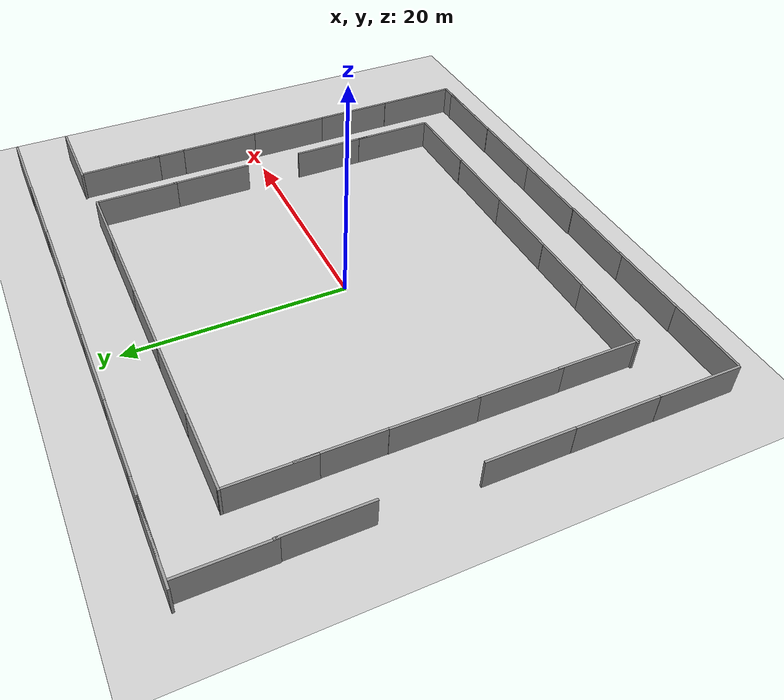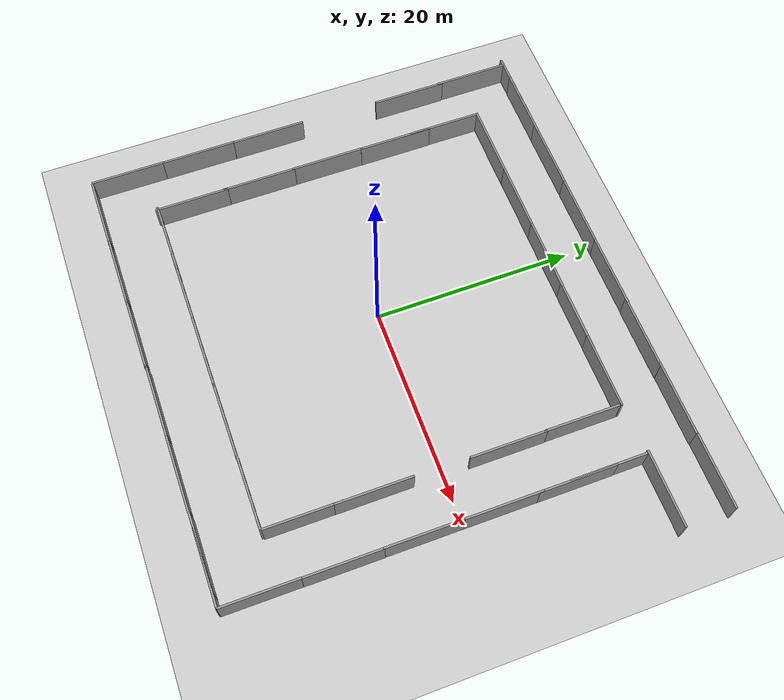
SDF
<sdf version="1.7">
 <world name="default">
  <model name="ground_plane">
   <static>1</static>
   <link name="link">
    <collision name="collision">
     <geometry><plane><normal>0 0 1</normal><size>100 100</size></plane></geometry>
     <surface><friction><ode><mu>100</mu><mu2>50</mu2></ode></friction></surface>
    </collision>
    <visual name="visual">
     <cast_shadows>0</cast_shadows>
     <geometry><plane><normal>0 0 1</normal><size>100 100</size></plane></geometry>
     <material>
      <script><uri>file://media/materials/scripts/gazebo.material</uri><name>Gazebo/Grey</name></script>
     </material>
    </visual>
   </link>
  </model>
  <light name="sun" type="directional">
   <pose>0 0 10 0 -0 0</pose>
   <diffuse>0.8 0.8 0.8 1</diffuse>
   <specular>0.2 0.2 0.2 1</specular>
   <attenuation>
    <range>1000</range>
    <constant>0.9</constant>
    <linear>0.01</linear>
    <quadratic>0.001</quadratic>
   </attenuation>
   <direction>-0.5 0.1 -0.9</direction>
   <spot><inner_angle>0</inner_angle><outer_angle>0</outer_angle><falloff>0</falloff></spot>
  </light>
  <gravity>0 0 -9.8</gravity>
  <magnetic_field>6e-06 2.3e-05 -4.2e-05</magnetic_field>
  <atmosphere type="adiabatic"/>
  <physics name="default_physics" default="0" type="ode">
   <max_step_size>0.001</max_step_size>
   <real_time_factor>1</real_time_factor>
   <real_time_update_rate>1000</real_time_update_rate>
  </physics>
  <scene><ambient>0.4 0.4 0.4 1</ambient><background>0.7 0.7 0.7 1</background><shadows>1</shadows></scene>
  <audio><device>default</device></audio>
  <spherical_coordinates>
   <surface_model>EARTH_WGS84</surface_model>
   <latitude_deg>0</latitude_deg>
   <longitude_deg>0</longitude_deg>
   <elevation>0</elevation>
   <heading_deg>0</heading_deg>
  </spherical_coordinates>
  <model name="grey_wall_clone_6_clone_9_clone">
   <static>1</static>
   <link name="link">
    <pose>0 0 1.4 0 -0 0</pose>
    <collision name="collision"><geometry><box><size>7.5 0.2 2.8</size></box></geometry></collision>
    <visual name="visual">
     <cast_shadows>0</cast_shadows>
     <geometry><box><size>7.5 0.2 2.8</size></box></geometry>
     <material>
      <script>
       <uri>model://grey_wall/materials/scripts</uri>
       <uri>model://grey_wall/materials/textures</uri>
       <name>vrc/grey_wall</name>
      </script>
     </material>
    </visual>
   </link>
   <pose>-22.8028 -18.7186 0 0 -0 1.5708</pose>
  </model>
  <model name="grey_wall_clone_6_clone_9_clone_0">
   <static>1</static>
   <link name="link">
    <pose>0 0 1.4 0 -0 0</pose>
    <collision name="collision"><geometry><box><size>7.5 0.2 2.8</size></box></geometry></collision>
    <visual name="visual">
     <cast_shadows>0</cast_shadows>
     <geometry><box><size>7.5 0.2 2.8</size></box></geometry>
     <material>
      <script>
       <uri>model://grey_wall/materials/scripts</uri>
       <uri>model://grey_wall/materials/textures</uri>
       <name>vrc/grey_wall</name>
      </script>
     </material>
    </visual>
   </link>
   <pose>-22.7875 -11.3227 0 0 -0 1.5708</pose>
  </model>
  <model name="grey_wall_clone_6_clone_9_clone_1">
   <static>1</static>
   <link name="link">
    <pose>0 0 1.4 0 -0 0</pose>
    <collision name="collision"><geometry><box><size>7.5 0.2 2.8</size></box></geometry></collision>
    <visual name="visual">
     <cast_shadows>0</cast_shadows>
     <geometry><box><size>7.5 0.2 2.8</size></box></geometry>
     <material>
      <script>
       <uri>model://grey_wall/materials/scripts</uri>
       <uri>model://grey_wall/materials/textures</uri>
       <name>vrc/grey_wall</name>
      </script>
     </material>
    </visual>
   </link>
   <pose>-22.7695 -3.82448 0 0 -0 1.5708</pose>
  </model>
  <model name="grey_wall_clone_6_clone_9_clone_2">
   <static>1</static>
   <link name="link">
    <pose>0 0 1.4 0 -0 0</pose>
    <collision name="collision"><geometry><box><size>7.5 0.2 2.8</size></box></geometry></collision>
    <visual name="visual">
     <cast_shadows>0</cast_shadows>
     <geometry><box><size>7.5 0.2 2.8</size></box></geometry>
     <material>
      <script>
       <uri>model://grey_wall/materials/scripts</uri>
       <uri>model://grey_wall/materials/textures</uri>
       <name>vrc/grey_wall</name>
      </script>
     </material>
    </visual>
   </link>
   <pose>-22.6053 18.7039 0 0 -0 1.5708</pose>
  </model>
  <model name="grey_wall_clone_6_clone_9_clone_3">
   <static>1</static>
   <link name="link">
    <pose>0 0 1.4 0 -0 0</pose>
    <collision name="collision"><geometry><box><size>7.5 0.2 2.8</size></box></geometry></collision>
    <visual name="visual">
     <cast_shadows>0</cast_shadows>
     <geometry><box><size>7.5 0.2 2.8</size></box></geometry>
     <material>
      <script>
       <uri>model://grey_wall/materials/scripts</uri>
       <uri>model://grey_wall/materials/textures</uri>
       <name>vrc/grey_wall</name>
      </script>
     </material>
    </visual>
   </link>
   <pose>-22.5434 11.6616 0 0 -0 1.5708</pose>
  </model>
  <model name="grey_wall_clone_3_clone">
   <static>1</static>
   <link name="link">
    <pose>0 0 1.4 0 -0 0</pose>
    <collision name="collision"><geometry><box><size>7.5 0.2 2.8</size></box></geometry></collision>
    <visual name="visual">
     <cast_shadows>0</cast_shadows>
     <geometry><box><size>7.5 0.2 2.8</size></box></geometry>
     <material>
      <script>
       <uri>model://grey_wall/materials/scripts</uri>
       <uri>model://grey_wall/materials/textures</uri>
       <name>vrc/grey_wall</name>
      </script>
     </material>
    </visual>
   </link>
   <pose>-18.9579 -22.429 0 0 -0 0</pose>
  </model>
  <model name="grey_wall_clone_3_clone_0">
   <static>1</static>
   <link name="link">
    <pose>0 0 1.4 0 -0 0</pose>
    <collision name="collision"><geometry><box><size>7.5 0.2 2.8</size></box></geometry></collision>
    <visual name="visual">
     <cast_shadows>0</cast_shadows>
     <geometry><box><size>7.5 0.2 2.8</size></box></geometry>
     <material>
      <script>
       <uri>model://grey_wall/materials/scripts</uri>
       <uri>model://grey_wall/materials/textures</uri>
       <name>vrc/grey_wall</name>
      </script>
     </material>
    </visual>
   </link>
   <pose>-11.8108 -22.4126 0 0 -0 0</pose>
  </model>
  <model name="grey_wall_clone_3_clone_1">
   <static>1</static>
   <link name="link">
    <pose>0 0 1.4 0 -0 0</pose>
    <collision name="collision"><geometry><box><size>7.5 0.2 2.8</size></box></geometry></collision>
    <visual name="visual">
     <cast_shadows>0</cast_shadows>
     <geometry><box><size>7.5 0.2 2.8</size></box></geometry>
     <material>
      <script>
       <uri>model://grey_wall/materials/scripts</uri>
       <uri>model://grey_wall/materials/textures</uri>
       <name>vrc/grey_wall</name>
      </script>
     </material>
    </visual>
   </link>
   <pose>-4.80218 -22.3996 0 0 -0 0</pose>
  </model>
  <model name="grey_wall_clone_3_clone_2">
   <static>1</static>
   <link name="link">
    <pose>0 0 1.4 0 -0 0</pose>
    <collision name="collision"><geometry><box><size>7.5 0.2 2.8</size></box></geometry></collision>
    <visual name="visual">
     <cast_shadows>0</cast_shadows>
     <geometry><box><size>7.5 0.2 2.8</size></box></geometry>
     <material>
      <script>
       <uri>model://grey_wall/materials/scripts</uri>
       <uri>model://grey_wall/materials/textures</uri>
       <name>vrc/grey_wall</name>
      </script>
     </material>
    </visual>
   </link>
   <pose>2.39237 -22.3412 0 0 -0 0</pose>
  </model>
  <model name="grey_wall_clone_3_clone_3">
   <static>1</static>
   <link name="link">
    <pose>0 0 1.4 0 -0 0</pose>
    <collision name="collision"><geometry><box><size>7.5 0.2 2.8</size></box></geometry></collision>
    <visual name="visual">
     <cast_shadows>0</cast_shadows>
     <geometry><box><size>7.5 0.2 2.8</size></box></geometry>
     <material>
      <script>
       <uri>model://grey_wall/materials/scripts</uri>
       <uri>model://grey_wall/materials/textures</uri>
       <name>vrc/grey_wall</name>
      </script>
     </material>
    </visual>
   </link>
   <pose>9.8867 -22.3495 0 0 -0 0</pose>
  </model>
  <model name="grey_wall_clone_3_clone_4">
   <static>1</static>
   <link name="link">
    <pose>0 0 1.4 0 -0 0</pose>
    <collision name="collision"><geometry><box><size>7.5 0.2 2.8</size></box></geometry></collision>
    <visual name="visual">
     <cast_shadows>0</cast_shadows>
     <geometry><box><size>7.5 0.2 2.8</size></box></geometry>
     <material>
      <script>
       <uri>model://grey_wall/materials/scripts</uri>
       <uri>model://grey_wall/materials/textures</uri>
       <name>vrc/grey_wall</name>
      </script>
     </material>
    </visual>
   </link>
   <pose>17.3653 -22.3141 0 0 -0 0</pose>
  </model>
  <model name="grey_wall_clone_6_clone_9_clone_clone">
   <static>1</static>
   <link name="link">
    <pose>0 0 1.4 0 -0 0</pose>
    <collision name="collision"><geometry><box><size>7.5 0.2 2.8</size></box></geometry></collision>
    <visual name="visual">
     <cast_shadows>0</cast_shadows>
     <geometry><box><size>7.5 0.2 2.8</size></box></geometry>
     <material>
      <script>
       <uri>model://grey_wall/materials/scripts</uri>
       <uri>model://grey_wall/materials/textures</uri>
       <name>vrc/grey_wall</name>
      </script>
     </material>
    </visual>
   </link>
   <pose>22.4468 -18.5968 0 0 -0 1.5708</pose>
  </model>
  <model name="grey_wall_clone_3_clone_5">
   <static>1</static>
   <link name="link">
    <pose>0 0 1.4 0 -0 0</pose>
    <collision name="collision"><geometry><box><size>7.5 0.2 2.8</size></box></geometry></collision>
    <visual name="visual">
     <cast_shadows>0</cast_shadows>
     <geometry><box><size>7.5 0.2 2.8</size></box></geometry>
     <material>
      <script>
       <uri>model://grey_wall/materials/scripts</uri>
       <uri>model://grey_wall/materials/textures</uri>
       <name>vrc/grey_wall</name>
      </script>
     </material>
    </visual>
   </link>
   <pose>18.7624 -22.3211 0 0 -0 0</pose>
  </model>
  <model name="grey_wall_clone_6_clone_9_clone_clone_clone">
   <static>1</static>
   <link name="link">
    <pose>0 0 1.4 0 -0 0</pose>
    <collision name="collision"><geometry><box><size>7.5 0.2 2.8</size></box></geometry></collision>
    <visual name="visual">
     <cast_shadows>0</cast_shadows>
     <geometry><box><size>7.5 0.2 2.8</size></box></geometry>
     <material>
      <script>
       <uri>model://grey_wall/materials/scripts</uri>
       <uri>model://grey_wall/materials/textures</uri>
       <name>vrc/grey_wall</name>
      </script>
     </material>
    </visual>
   </link>
   <pose>22.4685 -11.1621 0 0 -0 1.5708</pose>
  </model>
  <model name="grey_wall_clone_6_clone_9_clone_clone_clone_0">
   <static>1</static>
   <link name="link">
    <pose>0 0 1.4 0 -0 0</pose>
    <collision name="collision"><geometry><box><size>7.5 0.2 2.8</size></box></geometry></collision>
    <visual name="visual">
     <cast_shadows>0</cast_shadows>
     <geometry><box><size>7.5 0.2 2.8</size></box></geometry>
     <material>
      <script>
       <uri>model://grey_wall/materials/scripts</uri>
       <uri>model://grey_wall/materials/textures</uri>
       <name>vrc/grey_wall</name>
      </script>
     </material>
    </visual>
   </link>
   <pose>22.4537 -3.79502 0 0 -0 1.5708</pose>
  </model>
  <model name="grey_wall_clone_6_clone_9_clone_clone_clone_1">
   <static>1</static>
   <link name="link">
    <pose>0 0 1.4 0 -0 0</pose>
    <collision name="collision"><geometry><box><size>7.5 0.2 2.8</size></box></geometry></collision>
    <visual name="visual">
     <cast_shadows>0</cast_shadows>
     <geometry><box><size>7.5 0.2 2.8</size></box></geometry>
     <material>
      <script>
       <uri>model://grey_wall/materials/scripts</uri>
       <uri>model://grey_wall/materials/textures</uri>
       <name>vrc/grey_wall</name>
      </script>
     </material>
    </visual>
   </link>
   <pose>22.4531 3.70303 0 0 -0 1.5708</pose>
  </model>
  <model name="grey_wall_clone_6_clone_9_clone_clone_clone_2">
   <static>1</static>
   <link name="link">
    <pose>0 0 1.4 0 -0 0</pose>
    <collision name="collision"><geometry><box><size>7.5 0.2 2.8</size></box></geometry></collision>
    <visual name="visual">
     <cast_shadows>0</cast_shadows>
     <geometry><box><size>7.5 0.2 2.8</size></box></geometry>
     <material>
      <script>
       <uri>model://grey_wall/materials/scripts</uri>
       <uri>model://grey_wall/materials/textures</uri>
       <name>vrc/grey_wall</name>
      </script>
     </material>
    </visual>
   </link>
   <pose>22.4645 10.7624 0 0 -0 1.5708</pose>
  </model>
  <model name="grey_wall_clone_6_clone_9_clone_clone_clone_3">
   <static>1</static>
   <link name="link">
    <pose>0 0 1.4 0 -0 0</pose>
    <collision name="collision"><geometry><box><size>7.5 0.2 2.8</size></box></geometry></collision>
    <visual name="visual">
     <cast_shadows>0</cast_shadows>
     <geometry><box><size>7.5 0.2 2.8</size></box></geometry>
     <material>
      <script>
       <uri>model://grey_wall/materials/scripts</uri>
       <uri>model://grey_wall/materials/textures</uri>
       <name>vrc/grey_wall</name>
      </script>
     </material>
    </visual>
   </link>
   <pose>22.4416 13.7343 0 0 -0 1.5708</pose>
  </model>
  <model name="grey_wall_clone_3_clone_6">
   <static>1</static>
   <link name="link">
    <pose>0 0 1.4 0 -0 0</pose>
    <collision name="collision"><geometry><box><size>7.5 0.2 2.8</size></box></geometry></collision>
    <visual name="visual">
     <cast_shadows>0</cast_shadows>
     <geometry><box><size>7.5 0.2 2.8</size></box></geometry>
     <material>
      <script>
       <uri>model://grey_wall/materials/scripts</uri>
       <uri>model://grey_wall/materials/textures</uri>
       <name>vrc/grey_wall</name>
      </script>
     </material>
    </visual>
   </link>
   <pose>25.9397 22.4893 0 0 -0 0</pose>
  </model>
  <model name="grey_wall_clone_3_clone_7">
   <static>1</static>
   <link name="link">
    <pose>0 0 1.4 0 -0 0</pose>
    <collision name="collision"><geometry><box><size>7.5 0.2 2.8</size></box></geometry></collision>
    <visual name="visual">
     <cast_shadows>0</cast_shadows>
     <geometry><box><size>7.5 0.2 2.8</size></box></geometry>
     <material>
      <script>
       <uri>model://grey_wall/materials/scripts</uri>
       <uri>model://grey_wall/materials/textures</uri>
       <name>vrc/grey_wall</name>
      </script>
     </material>
    </visual>
   </link>
   <pose>25.9506 17.604 0 0 -0 0</pose>
  </model>
  <model name="grey_wall_clone_3_clone_8">
   <static>1</static>
   <link name="link">
    <pose>0 0 1.4 0 -0 0</pose>
    <collision name="collision"><geometry><box><size>7.5 0.2 2.8</size></box></geometry></collision>
    <visual name="visual">
     <cast_shadows>0</cast_shadows>
     <geometry><box><size>7.5 0.2 2.8</size></box></geometry>
     <material>
      <script>
       <uri>model://grey_wall/materials/scripts</uri>
       <uri>model://grey_wall/materials/textures</uri>
       <name>vrc/grey_wall</name>
      </script>
     </material>
    </visual>
   </link>
   <pose>18.5546 22.4562 0 0 -0 0</pose>
  </model>
  <model name="grey_wall_clone_3_clone_9">
   <static>1</static>
   <link name="link">
    <pose>0 0 1.4 0 -0 0</pose>
    <collision name="collision"><geometry><box><size>7.5 0.2 2.8</size></box></geometry></collision>
    <visual name="visual">
     <cast_shadows>0</cast_shadows>
     <geometry><box><size>7.5 0.2 2.8</size></box></geometry>
     <material>
      <script>
       <uri>model://grey_wall/materials/scripts</uri>
       <uri>model://grey_wall/materials/textures</uri>
       <name>vrc/grey_wall</name>
      </script>
     </material>
    </visual>
   </link>
   <pose>11.4427 22.4286 0 0 -0 0</pose>
  </model>
  <model name="grey_wall_clone_3_clone_10">
   <static>1</static>
   <link name="link">
    <pose>0 0 1.4 0 -0 0</pose>
    <collision name="collision"><geometry><box><size>7.5 0.2 2.8</size></box></geometry></collision>
    <visual name="visual">
     <cast_shadows>0</cast_shadows>
     <geometry><box><size>7.5 0.2 2.8</size></box></geometry>
     <material>
      <script>
       <uri>model://grey_wall/materials/scripts</uri>
       <uri>model://grey_wall/materials/textures</uri>
       <name>vrc/grey_wall</name>
      </script>
     </material>
    </visual>
   </link>
   <pose>4.36112 22.4639 0 0 -0 0</pose>
  </model>
  <model name="grey_wall_clone_3_clone_11">
   <static>1</static>
   <link name="link">
    <pose>0 0 1.4 0 -0 0</pose>
    <collision name="collision"><geometry><box><size>7.5 0.2 2.8</size></box></geometry></collision>
    <visual name="visual">
     <cast_shadows>0</cast_shadows>
     <geometry><box><size>7.5 0.2 2.8</size></box></geometry>
     <material>
      <script>
       <uri>model://grey_wall/materials/scripts</uri>
       <uri>model://grey_wall/materials/textures</uri>
       <name>vrc/grey_wall</name>
      </script>
     </material>
    </visual>
   </link>
   <pose>-3.00989 22.4631 0 0 -0 0</pose>
  </model>
  <model name="grey_wall_clone_3_clone_12">
   <static>1</static>
   <link name="link">
    <pose>0 0 1.4 0 -0 0</pose>
    <collision name="collision"><geometry><box><size>7.5 0.2 2.8</size></box></geometry></collision>
    <visual name="visual">
     <cast_shadows>0</cast_shadows>
     <geometry><box><size>7.5 0.2 2.8</size></box></geometry>
     <material>
      <script>
       <uri>model://grey_wall/materials/scripts</uri>
       <uri>model://grey_wall/materials/textures</uri>
       <name>vrc/grey_wall</name>
      </script>
     </material>
    </visual>
   </link>
   <pose>-10.373 22.477 0 0 -0 0</pose>
  </model>
  <model name="grey_wall_clone_3_clone_13">
   <static>1</static>
   <link name="link">
    <pose>0 0 1.4 0 -0 0</pose>
    <collision name="collision"><geometry><box><size>7.5 0.2 2.8</size></box></geometry></collision>
    <visual name="visual">
     <cast_shadows>0</cast_shadows>
     <geometry><box><size>7.5 0.2 2.8</size></box></geometry>
     <material>
      <script>
       <uri>model://grey_wall/materials/scripts</uri>
       <uri>model://grey_wall/materials/textures</uri>
       <name>vrc/grey_wall</name>
      </script>
     </material>
    </visual>
   </link>
   <pose>-17.0185 22.4867 0 0 -0 0</pose>
  </model>
  <model name="grey_wall_clone_3_clone_14">
   <static>1</static>
   <link name="link">
    <pose>0 0 1.4 0 -0 0</pose>
    <collision name="collision"><geometry><box><size>7.5 0.2 2.8</size></box></geometry></collision>
    <visual name="visual">
     <cast_shadows>0</cast_shadows>
     <geometry><box><size>7.5 0.2 2.8</size></box></geometry>
     <material>
      <script>
       <uri>model://grey_wall/materials/scripts</uri>
       <uri>model://grey_wall/materials/textures</uri>
       <name>vrc/grey_wall</name>
      </script>
     </material>
    </visual>
   </link>
   <pose>-19.5344 22.5041 0 0 -0 0</pose>
  </model>
  <model name="grey_wall_clone_6_clone_9_clone_0_clone">
   <static>1</static>
   <link name="link">
    <pose>0 0 1.4 0 -0 0</pose>
    <collision name="collision"><geometry><box><size>7.5 0.2 2.8</size></box></geometry></collision>
    <visual name="visual">
     <cast_shadows>0</cast_shadows>
     <geometry><box><size>7.5 0.2 2.8</size></box></geometry>
     <material>
      <script>
       <uri>model://grey_wall/materials/scripts</uri>
       <uri>model://grey_wall/materials/textures</uri>
       <name>vrc/grey_wall</name>
      </script>
     </material>
    </visual>
   </link>
   <pose>-17.4486 -13.4774 0 0 -0 1.5708</pose>
  </model>
  <model name="grey_wall_clone_6_clone_9_clone_0_clone_0">
   <static>1</static>
   <link name="link">
    <pose>0 0 1.4 0 -0 0</pose>
    <collision name="collision"><geometry><box><size>7.5 0.2 2.8</size></box></geometry></collision>
    <visual name="visual">
     <cast_shadows>0</cast_shadows>
     <geometry><box><size>7.5 0.2 2.8</size></box></geometry>
     <material>
      <script>
       <uri>model://grey_wall/materials/scripts</uri>
       <uri>model://grey_wall/materials/textures</uri>
       <name>vrc/grey_wall</name>
      </script>
     </material>
    </visual>
   </link>
   <pose>-17.4726 -6.40884 0 0 -0 1.5708</pose>
  </model>
  <model name="grey_wall_clone_6_clone_9_clone_0_clone_0_clone">
   <static>1</static>
   <link name="link">
    <pose>0 0 1.4 0 -0 0</pose>
    <collision name="collision"><geometry><box><size>7.5 0.2 2.8</size></box></geometry></collision>
    <visual name="visual">
     <cast_shadows>0</cast_shadows>
     <geometry><box><size>7.5 0.2 2.8</size></box></geometry>
     <material>
      <script>
       <uri>model://grey_wall/materials/scripts</uri>
       <uri>model://grey_wall/materials/textures</uri>
       <name>vrc/grey_wall</name>
      </script>
     </material>
    </visual>
   </link>
   <pose>-17.4938 0.87072 0 0 -0 1.5708</pose>
  </model>
  <model name="grey_wall_clone_6_clone_9_clone_0_clone_0_clone_0">
   <static>1</static>
   <link name="link">
    <pose>0 0 1.4 0 -0 0</pose>
    <collision name="collision"><geometry><box><size>7.5 0.2 2.8</size></box></geometry></collision>
    <visual name="visual">
     <cast_shadows>0</cast_shadows>
     <geometry><box><size>7.5 0.2 2.8</size></box></geometry>
     <material>
      <script>
       <uri>model://grey_wall/materials/scripts</uri>
       <uri>model://grey_wall/materials/textures</uri>
       <name>vrc/grey_wall</name>
      </script>
     </material>
    </visual>
   </link>
   <pose>-17.4731 8.22832 0 0 -0 1.5708</pose>
  </model>
  <model name="grey_wall_clone_6_clone_9_clone_0_clone_0_clone_1">
   <static>1</static>
   <link name="link">
    <pose>0 0 1.4 0 -0 0</pose>
    <collision name="collision"><geometry><box><size>7.5 0.2 2.8</size></box></geometry></collision>
    <visual name="visual">
     <cast_shadows>0</cast_shadows>
     <geometry><box><size>7.5 0.2 2.8</size></box></geometry>
     <material>
      <script>
       <uri>model://grey_wall/materials/scripts</uri>
       <uri>model://grey_wall/materials/textures</uri>
       <name>vrc/grey_wall</name>
      </script>
     </material>
    </visual>
   </link>
   <pose>-17.506 13.7229 0 0 -0 1.5708</pose>
  </model>
  <model name="grey_wall_clone_3_clone_12_clone">
   <static>1</static>
   <link name="link">
    <pose>0 0 1.4 0 -0 0</pose>
    <collision name="collision"><geometry><box><size>7.5 0.2 2.8</size></box></geometry></collision>
    <visual name="visual">
     <cast_shadows>0</cast_shadows>
     <geometry><box><size>7.5 0.2 2.8</size></box></geometry>
     <material>
      <script>
       <uri>model://grey_wall/materials/scripts</uri>
       <uri>model://grey_wall/materials/textures</uri>
       <name>vrc/grey_wall</name>
      </script>
     </material>
    </visual>
   </link>
   <pose>-13.8586 17.3548 0 0 -0 0</pose>
  </model>
  <model name="grey_wall_clone_3_clone_12_clone_0">
   <static>1</static>
   <link name="link">
    <pose>0 0 1.4 0 -0 0</pose>
    <collision name="collision"><geometry><box><size>7.5 0.2 2.8</size></box></geometry></collision>
    <visual name="visual">
     <cast_shadows>0</cast_shadows>
     <geometry><box><size>7.5 0.2 2.8</size></box></geometry>
     <material>
      <script>
       <uri>model://grey_wall/materials/scripts</uri>
       <uri>model://grey_wall/materials/textures</uri>
       <name>vrc/grey_wall</name>
      </script>
     </material>
    </visual>
   </link>
   <pose>-6.64075 17.3601 0 0 -0 0</pose>
  </model>
  <model name="grey_wall_clone_3_clone_12_clone_1">
   <static>1</static>
   <link name="link">
    <pose>0 0 1.4 0 -0 0</pose>
    <collision name="collision"><geometry><box><size>7.5 0.2 2.8</size></box></geometry></collision>
    <visual name="visual">
     <cast_shadows>0</cast_shadows>
     <geometry><box><size>7.5 0.2 2.8</size></box></geometry>
     <material>
      <script>
       <uri>model://grey_wall/materials/scripts</uri>
       <uri>model://grey_wall/materials/textures</uri>
       <name>vrc/grey_wall</name>
      </script>
     </material>
    </visual>
   </link>
   <pose>0.610416 17.3484 0 0 -0 0</pose>
  </model>
  <model name="grey_wall_clone_3_clone_12_clone_2">
   <static>1</static>
   <link name="link">
    <pose>0 0 1.4 0 -0 0</pose>
    <collision name="collision"><geometry><box><size>7.5 0.2 2.8</size></box></geometry></collision>
    <visual name="visual">
     <cast_shadows>0</cast_shadows>
     <geometry><box><size>7.5 0.2 2.8</size></box></geometry>
     <material>
      <script>
       <uri>model://grey_wall/materials/scripts</uri>
       <uri>model://grey_wall/materials/textures</uri>
       <name>vrc/grey_wall</name>
      </script>
     </material>
    </visual>
   </link>
   <pose>7.77775 17.3435 0 0 -0 0</pose>
  </model>
  <model name="grey_wall_clone_3_clone_12_clone_3">
   <static>1</static>
   <link name="link">
    <pose>0 0 1.4 0 -0 0</pose>
    <collision name="collision"><geometry><box><size>7.5 0.2 2.8</size></box></geometry></collision>
    <visual name="visual">
     <cast_shadows>0</cast_shadows>
     <geometry><box><size>7.5 0.2 2.8</size></box></geometry>
     <material>
      <script>
       <uri>model://grey_wall/materials/scripts</uri>
       <uri>model://grey_wall/materials/textures</uri>
       <name>vrc/grey_wall</name>
      </script>
     </material>
    </visual>
   </link>
   <pose>13.7403 17.3379 0 0 -0 0</pose>
  </model>
  <model name="grey_wall_clone_6_clone_9_clone_clone_clone_3_clone">
   <static>1</static>
   <link name="link">
    <pose>0 0 1.4 0 -0 0</pose>
    <collision name="collision"><geometry><box><size>7.5 0.2 2.8</size></box></geometry></collision>
    <visual name="visual">
     <cast_shadows>0</cast_shadows>
     <geometry><box><size>7.5 0.2 2.8</size></box></geometry>
     <material>
      <script>
       <uri>model://grey_wall/materials/scripts</uri>
       <uri>model://grey_wall/materials/textures</uri>
       <name>vrc/grey_wall</name>
      </script>
     </material>
    </visual>
   </link>
   <pose>17.3973 13.4235 0 0 -0 1.5708</pose>
  </model>
  <model name="grey_wall_clone_6_clone_9_clone_clone_clone_3_clone_0">
   <static>1</static>
   <link name="link">
    <pose>0 0 1.4 0 -0 0</pose>
    <collision name="collision"><geometry><box><size>7.5 0.2 2.8</size></box></geometry></collision>
    <visual name="visual">
     <cast_shadows>0</cast_shadows>
     <geometry><box><size>7.5 0.2 2.8</size></box></geometry>
     <material>
      <script>
       <uri>model://grey_wall/materials/scripts</uri>
       <uri>model://grey_wall/materials/textures</uri>
       <name>vrc/grey_wall</name>
      </script>
     </material>
    </visual>
   </link>
   <pose>17.4198 6.22482 0 0 -0 1.5708</pose>
  </model>
  <model name="grey_wall_clone_6_clone_9_clone_clone_clone_3_clone_1">
   <static>1</static>
   <link name="link">
    <pose>0 0 1.4 0 -0 0</pose>
    <collision name="collision"><geometry><box><size>7.5 0.2 2.8</size></box></geometry></collision>
    <visual name="visual">
     <cast_shadows>0</cast_shadows>
     <geometry><box><size>7.5 0.2 2.8</size></box></geometry>
     <material>
      <script>
       <uri>model://grey_wall/materials/scripts</uri>
       <uri>model://grey_wall/materials/textures</uri>
       <name>vrc/grey_wall</name>
      </script>
     </material>
    </visual>
   </link>
   <pose>17.3111 -6.52239 0 0 -0 1.5708</pose>
  </model>
  <model name="grey_wall_clone_6_clone_9_clone_clone_clone_3_clone_2">
   <static>1</static>
   <link name="link">
    <pose>0 0 1.4 0 -0 0</pose>
    <collision name="collision"><geometry><box><size>7.5 0.2 2.8</size></box></geometry></collision>
    <visual name="visual">
     <cast_shadows>0</cast_shadows>
     <geometry><box><size>7.5 0.2 2.8</size></box></geometry>
     <material>
      <script>
       <uri>model://grey_wall/materials/scripts</uri>
       <uri>model://grey_wall/materials/textures</uri>
       <name>vrc/grey_wall</name>
      </script>
     </material>
    </visual>
   </link>
   <pose>17.3001 -13.1141 0 0 -0 1.5708</pose>
  </model>
  <model name="grey_wall_clone_3_clone_3_clone">
   <static>1</static>
   <link name="link">
    <pose>0 0 1.4 0 -0 0</pose>
    <collision name="collision"><geometry><box><size>7.5 0.2 2.8</size></box></geometry></collision>
    <visual name="visual">
     <cast_shadows>0</cast_shadows>
     <geometry><box><size>7.5 0.2 2.8</size></box></geometry>
     <material>
      <script>
       <uri>model://grey_wall/materials/scripts</uri>
       <uri>model://grey_wall/materials/textures</uri>
       <name>vrc/grey_wall</name>
      </script>
     </material>
    </visual>
   </link>
   <pose>13.5479 -16.9449 0 0 -0 0</pose>
  </model>
  <model name="grey_wall_clone_3_clone_3_clone_0">
   <static>1</static>
   <link name="link">
    <pose>0 0 1.4 0 -0 0</pose>
    <collision name="collision"><geometry><box><size>7.5 0.2 2.8</size></box></geometry></collision>
    <visual name="visual">
     <cast_shadows>0</cast_shadows>
     <geometry><box><size>7.5 0.2 2.8</size></box></geometry>
     <material>
      <script>
       <uri>model://grey_wall/materials/scripts</uri>
       <uri>model://grey_wall/materials/textures</uri>
       <name>vrc/grey_wall</name>
      </script>
     </material>
    </visual>
   </link>
   <pose>6.41274 -16.9769 0 0 -0 0</pose>
  </model>
  <model name="grey_wall_clone_3_clone_3_clone_1">
   <static>1</static>
   <link name="link">
    <pose>0 0 1.4 0 -0 0</pose>
    <collision name="collision"><geometry><box><size>7.5 0.2 2.8</size></box></geometry></collision>
    <visual name="visual">
     <cast_shadows>0</cast_shadows>
     <geometry><box><size>7.5 0.2 2.8</size></box></geometry>
     <material>
      <script>
       <uri>model://grey_wall/materials/scripts</uri>
       <uri>model://grey_wall/materials/textures</uri>
       <name>vrc/grey_wall</name>
      </script>
     </material>
    </visual>
   </link>
   <pose>-0.779299 -16.9818 0 0 -0 0</pose>
  </model>
  <model name="grey_wall_clone_3_clone_3_clone_2">
   <static>1</static>
   <link name="link">
    <pose>0 0 1.4 0 -0 0</pose>
    <collision name="collision"><geometry><box><size>7.5 0.2 2.8</size></box></geometry></collision>
    <visual name="visual">
     <cast_shadows>0</cast_shadows>
     <geometry><box><size>7.5 0.2 2.8</size></box></geometry>
     <material>
      <script>
       <uri>model://grey_wall/materials/scripts</uri>
       <uri>model://grey_wall/materials/textures</uri>
       <name>vrc/grey_wall</name>
      </script>
     </material>
    </visual>
   </link>
   <pose>-8.30515 -16.98 0 0 -0 0</pose>
  </model>
  <model name="grey_wall_clone_3_clone_3_clone_3">
   <static>1</static>
   <link name="link">
    <pose>0 0 1.4 0 -0 0</pose>
    <collision name="collision"><geometry><box><size>7.5 0.2 2.8</size></box></geometry></collision>
    <visual name="visual">
     <cast_shadows>0</cast_shadows>
     <geometry><box><size>7.5 0.2 2.8</size></box></geometry>
     <material>
      <script>
       <uri>model://grey_wall/materials/scripts</uri>
       <uri>model://grey_wall/materials/textures</uri>
       <name>vrc/grey_wall</name>
      </script>
     </material>
    </visual>
   </link>
   <pose>-13.9773 -16.9545 0 0 -0 0</pose>
  </model>
 </world>
</sdf>
